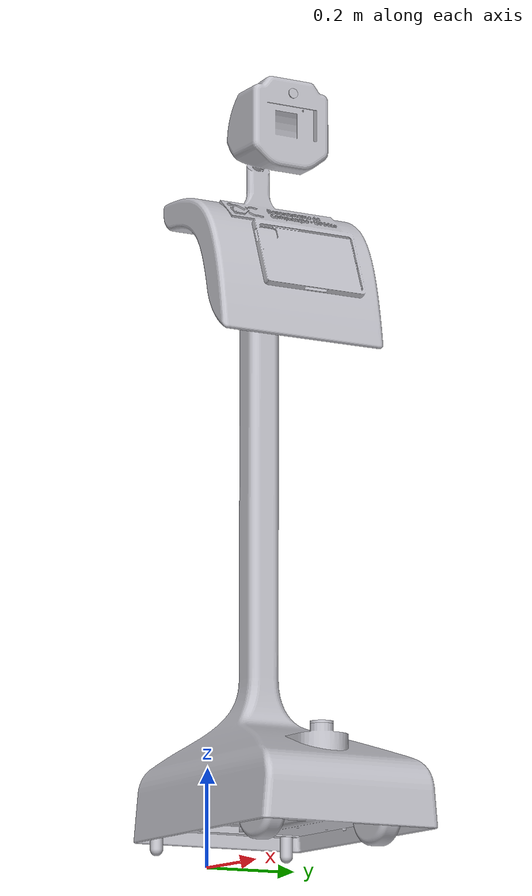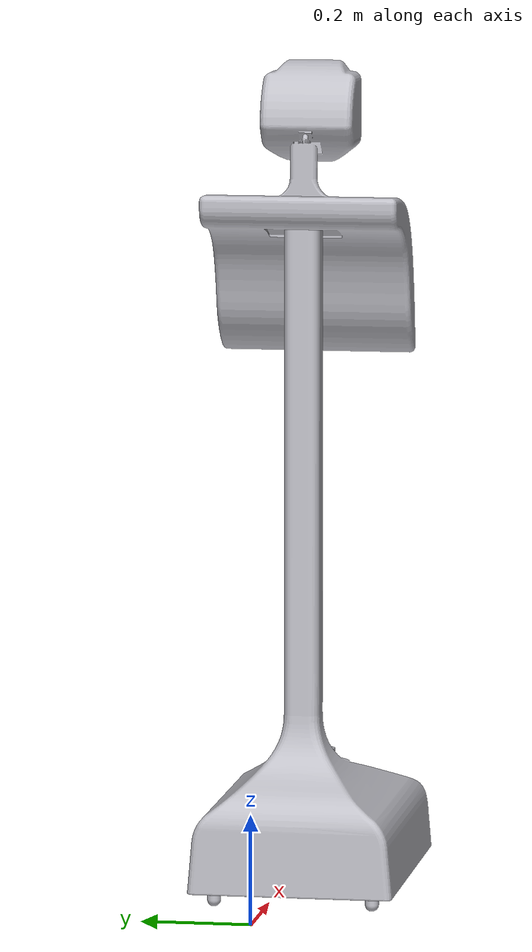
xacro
<?xml version="1.0" ?>
<robot name="urdf" xmlns:xacro="http://www.ros.org/wiki/xacro">

<xacro:include filename="$(find urdf_description)/urdf/materials.xacro" />
<xacro:include filename="$(find urdf_description)/urdf/urdf.trans" />
<xacro:include filename="$(find urdf_description)/urdf/urdf.gazebo" />
<link name="base_link">
  <inertial>
    <origin xyz="0.38073053640901633 -0.047656517956028745 0.8272587512527909" rpy="0 0 0"/>
    <mass value="5"/>
    <inertia ixx="2.171153" iyy="2.182453" izz="0.177737" ixy="-0.000507" iyz="-0.001692" ixz="-0.058868"/>
  </inertial>
  <visual>
    <origin xyz="0 0 0" rpy="0 0 0"/>
    <geometry>
      <mesh filename="file://$(find urdf_description)/meshes/base_link.stl" scale="0.001 0.001 0.001"/>
    </geometry>
    <material name="silver"/>
  </visual>
  <collision>
    <origin xyz="0 0 0" rpy="0 0 0"/>
    <geometry>
      <mesh filename="file://$(find urdf_description)/meshes/base_link.stl" scale="0.001 0.001 0.001"/>
    </geometry>
  </collision>
</link>

<link name="right_wheel_1">
  <inertial>
    <origin xyz="2.752114103277137e-07 -0.021499759694524 1.965922981628232e-07" rpy="0 0 0"/>
    <mass value="0.8"/>
    <inertia ixx="0.000654" iyy="0.001134" izz="0.000654" ixy="0.0" iyz="0.0" ixz="0.0"/>
  </inertial>
  <visual>
    <origin xyz="-0.528602 0.150604 -0.064" rpy="0 0 0"/>
    <geometry>
      <mesh filename="file://$(find urdf_description)/meshes/right_wheel_1.stl" scale="0.001 0.001 0.001"/>
    </geometry>
    <material name="silver"/>
  </visual>
  <collision>
    <origin xyz="-0.528602 0.150604 -0.064" rpy="0 0 0"/>
    <geometry>
      <mesh filename="file://$(find urdf_description)/meshes/right_wheel_1.stl" scale="0.001 0.001 0.001"/>
    </geometry>
  </collision>
</link>

<link name="left_wheel_1">
  <inertial>
    <origin xyz="2.752114213189216e-07 0.021500240305474982 1.9659229784363408e-07" rpy="0 0 0"/>
    <mass value="0.8"/>
    <inertia ixx="0.000654" iyy="0.001134" izz="0.000654" ixy="0.0" iyz="0.0" ixz="0.0"/>
  </inertial>
  <visual>
    <origin xyz="-0.528602 -0.056396 -0.064" rpy="0 0 0"/>
    <geometry>
      <mesh filename="file://$(find urdf_description)/meshes/left_wheel_1.stl" scale="0.001 0.001 0.001"/>
    </geometry>
    <material name="silver"/>
  </visual>
  <collision>
    <origin xyz="-0.528602 -0.056396 -0.064" rpy="0 0 0"/>
    <geometry>
      <mesh filename="file://$(find urdf_description)/meshes/left_wheel_1.stl" scale="0.001 0.001 0.001"/>
    </geometry>
  </collision>
</link>

<link name="lidar_1">
  <inertial>
    <origin xyz="2.362712840930925e-07 8.86716847794955e-08 0.002500135965096101" rpy="0 0 0"/>
    <mass value="0.06242442777453348"/>
    <inertia ixx="8e-06" iyy="8e-06" izz="1.6e-05" ixy="-0.0" iyz="-0.0" ixz="0.0"/>
  </inertial>
  <visual>
    <origin xyz="-0.532507 0.045693 -0.22269" rpy="0 0 0"/>
    <geometry>
      <mesh filename="file://$(find urdf_description)/meshes/lidar_1.stl" scale="0.001 0.001 0.001"/>
    </geometry>
    <material name="silver"/>
  </visual>
  <collision>
    <origin xyz="-0.532507 0.045693 -0.22269" rpy="0 0 0"/>
    <geometry>
      <mesh filename="file://$(find urdf_description)/meshes/lidar_1.stl" scale="0.001 0.001 0.001"/>
    </geometry>
  </collision>
</link>

<link name="camera_1">
  <inertial>
    <origin xyz="-0.007999988540329073 4.9895411149969426e-08 -0.003022088481700047" rpy="0 0 0"/>
    <mass value="0.049323004661358784"/>
    <inertia ixx="2e-06" iyy="3e-06" izz="3e-06" ixy="0.0" iyz="0.0" ixz="-0.0"/>
  </inertial>
  <visual>
    <origin xyz="-0.429 0.048 -1.492556" rpy="0 0 0"/>
    <geometry>
      <mesh filename="file://$(find urdf_description)/meshes/camera_1.stl" scale="0.001 0.001 0.001"/>
    </geometry>
    <material name="silver"/>
  </visual>
  <collision>
    <origin xyz="-0.429 0.048 -1.492556" rpy="0 0 0"/>
    <geometry>
      <mesh filename="file://$(find urdf_description)/meshes/camera_1.stl" scale="0.001 0.001 0.001"/>
    </geometry>
  </collision>
</link>

<link name="right_caster_1">
  <inertial>
    <origin xyz="-4.642546184430163e-07 0.020000488401277994 -0.026531145044713385" rpy="0 0 0"/>
    <mass value="0.024368614265579458"/>
    <inertia ixx="5e-06" iyy="5e-06" izz="2e-06" ixy="0.0" iyz="0.0" ixz="-0.0"/>
  </inertial>
  <visual>
    <origin xyz="-0.154878 0.21578 -0.054022" rpy="0 0 0"/>
    <geometry>
      <mesh filename="file://$(find urdf_description)/meshes/right_caster_1.stl" scale="0.001 0.001 0.001"/>
    </geometry>
    <material name="silver"/>
  </visual>
  <collision>
    <origin xyz="-0.154878 0.21578 -0.054022" rpy="0 0 0"/>
    <geometry>
      <mesh filename="file://$(find urdf_description)/meshes/right_caster_1.stl" scale="0.001 0.001 0.001"/>
    </geometry>
  </collision>
</link>

<link name="left_caster_1">
  <inertial>
    <origin xyz="-4.6425461849852745e-07 -0.019999508394971985 -0.02653114504471337" rpy="0 0 0"/>
    <mass value="0.024368614265579583"/>
    <inertia ixx="5e-06" iyy="5e-06" izz="2e-06" ixy="-0.0" iyz="0.0" ixz="-0.0"/>
  </inertial>
  <visual>
    <origin xyz="-0.154878 -0.11422 -0.054022" rpy="0 0 0"/>
    <geometry>
      <mesh filename="file://$(find urdf_description)/meshes/left_caster_1.stl" scale="0.001 0.001 0.001"/>
    </geometry>
    <material name="silver"/>
  </visual>
  <collision>
    <origin xyz="-0.154878 -0.11422 -0.054022" rpy="0 0 0"/>
    <geometry>
      <mesh filename="file://$(find urdf_description)/meshes/left_caster_1.stl" scale="0.001 0.001 0.001"/>
    </geometry>
  </collision>
</link>

<joint name="right_wheel_joint" type="continuous">
  <origin xyz="0.528602 -0.150604 0.064" rpy="0 0 0"/>
  <parent link="base_link"/>
  <child link="right_wheel_1"/>
  <axis xyz="-0.0 1.0 0.0"/>
</joint>

<joint name="left_wheel_joint" type="continuous">
  <origin xyz="0.528602 0.056396 0.064" rpy="0 0 0"/>
  <parent link="base_link"/>
  <child link="left_wheel_1"/>
  <axis xyz="-0.0 1.0 0.0"/>
</joint>

<joint name="lidar_joint" type="fixed">
  <origin xyz="0.532507 -0.045693 0.22269" rpy="0 0 0"/>
  <parent link="base_link"/>
  <child link="lidar_1"/>
</joint>

<joint name="camera_joint" type="fixed">
  <origin xyz="0.429 -0.048 1.492556" rpy="0 0 0"/>
  <parent link="base_link"/>
  <child link="camera_1"/>
</joint>

<joint name="right_caster_joint" type="fixed">
  <origin xyz="0.154878 -0.21578 0.054022" rpy="0 0 0"/>
  <parent link="base_link"/>
  <child link="right_caster_1"/>
</joint>

<joint name="left_caster_joint" type="fixed">
  <origin xyz="0.154878 0.11422 0.054022" rpy="0 0 0"/>
  <parent link="base_link"/>
  <child link="left_caster_1"/>
</joint>

</robot>

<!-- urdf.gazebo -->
<robot name="urdf" xmlns:xacro="http://www.ros.org/wiki/xacro" >

<xacro:property name="body_color" value="Gazebo/Silver" />

<gazebo reference="base_link">
  <material>${body_color}</material>
  <mu1>0.1</mu1>
  <mu2>0.1</mu2>
  <self_collide>true</self_collide>
  <gravity>true</gravity>
</gazebo>

<gazebo reference="right_wheel_1">
  <material>${body_color}</material>
  <mu1>1500</mu1>
  <mu2>1500</mu2>
  <self_collide>true</self_collide>
</gazebo>

<gazebo reference="left_wheel_1">
  <material>${body_color}</material>
  <mu1>1500</mu1>
  <mu2>1500</mu2>
  <self_collide>true</self_collide>
</gazebo>

<gazebo reference="lidar_1">
  <material>${body_color}</material>
  <mu1>0.2</mu1>
  <mu2>0.2</mu2>
  <self_collide>true</self_collide>

  <sensor name="lidar_sensor" type="ray">
    <always_on>true</always_on>
    <visualize>true</visualize>
    <update_rate>10</update_rate>

    <ray>
      <scan>
        <horizontal>
          <samples>720</samples>
          <resolution>1</resolution>
          <min_angle>-3.14</min_angle>
          <max_angle> 3.14</max_angle>
        </horizontal>
      </scan>
      <range>
        <min>0.1</min>
        <max>12.0</max>
        <resolution>0.01</resolution>
      </range>
    </ray>

    <plugin name="lidar" filename="libgazebo_ros_ray_sensor.so">
      <ros>
        <remapping>~/out:=scan</remapping>
      </ros>
      <output_type>sensor_msgs/LaserScan</output_type>
      <frame_name>lidar_1</frame_name>
    </plugin>
  </sensor>
</gazebo>

<gazebo reference="camera_1">
  <material>${body_color}</material>
  <mu1>0.2</mu1>
  <mu2>0.2</mu2>
  <self_collide>true</self_collide>
</gazebo>

<gazebo reference="right_caster_1">
  <material>${body_color}</material>
  <mu1>0.1</mu1>
  <mu2>0.1</mu2>
  <self_collide>true</self_collide>
</gazebo>

<gazebo reference="left_caster_1">
  <material>${body_color}</material>
  <mu1>0.1</mu1>
  <mu2>0.1</mu2>
  <self_collide>true</self_collide>
</gazebo>

<gazebo>
  <plugin name="differential_drive_controller" filename="libgazebo_ros_diff_drive.so">

    <!-- Plugin update rate in Hz -->
    <updateRate>100</updateRate>

    <!-- Name of left joint, defaults to `left_joint` -->
    <left_joint>left_wheel_joint</left_joint>

    <!-- Name of right joint, defaults to `right_joint` -->
    <right_joint>right_wheel_joint</right_joint>

    <!-- The distance from the center of one wheel to the other, in meters, defaults to 0.34 m -->
    <wheel_separation>0.206</wheel_separation>

    <!-- Diameter of the wheels, in meters, defaults to 0.15 m -->
    <wheel_diameter>0.128</wheel_diameter>

    <!-- Wheel acceleration, in rad/s^2, defaults to 0.0 rad/s^2 -->
    <wheel_acceleration>0.5</wheel_acceleration>

    <!-- Maximum torque which the wheels can produce, in Nm, defaults to 5 Nm -->
    <wheel_torque>10</wheel_torque>

    <!-- Topic to receive geometry_msgs/Twist message commands, defaults to `cmd_vel` -->
    <command_topic>cmd_vel</command_topic>

    <!-- Topic to publish nav_msgs/Odometry messages, defaults to `odom` -->
    <odometry_topic>odom</odometry_topic>

    <!-- Odometry frame, defaults to `odom` -->
    <odometry_frame>odom</odometry_frame>

    <!-- Robot frame to calculate odometry from, defaults to `base_footprint` -->
    <robot_base_frame>base_link</robot_base_frame>

    <!-- Odometry source, 0 for ENCODER, 1 for WORLD, defaults to WORLD -->
    <odometry_source>1</odometry_source>

    <!-- Set to true to publish transforms for the wheel links, defaults to false -->
    <publish_wheel_tf>false</publish_wheel_tf>

    <!-- Set to true to publish sensor_msgs/JointState on /joint_states for the wheel joints, defaults to false -->
    <publish_wheel_joint_state>true</publish_wheel_joint_state>

    <!-- Set to true to publish transforms for the odometry, defaults to true -->
    <publish_odom>true</publish_odom>

    <!-- Set to true to publish the odom to base_link transform, defaults to true -->
    <publish_odom_tf>true</publish_odom_tf>

    <!-- Set to true to swap right and left wheels, defaults to true -->
    <legacy_mode>false</legacy_mode>
  </plugin>
</gazebo>

</robot>
